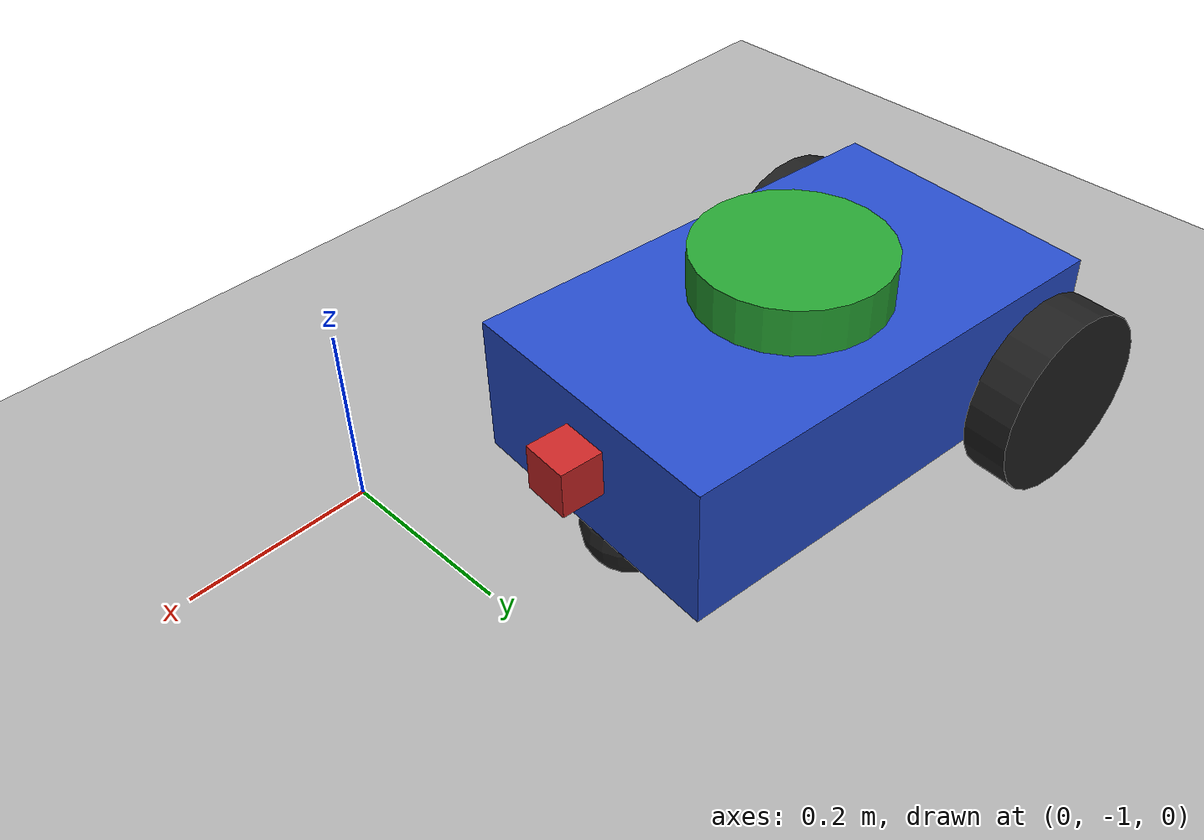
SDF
<sdf version="1.10">
 <world name="default">
  <plugin name="gz::sim::systems::Physics" filename="gz-sim-physics-system"/>
  <plugin name="gz::sim::systems::UserCommands" filename="gz-sim-user-commands-system"/>
  <plugin name="gz::sim::systems::SceneBroadcaster" filename="gz-sim-scene-broadcaster-system"/>
  <plugin name="gz::sim::systems::Sensors" filename="gz-sim-sensors-system">
   <render_engine>ogre2</render_engine>
  </plugin>
  <plugin name="gz::sim::systems::Imu" filename="gz-sim-imu-system"/>
  <scene>
   <shadows>false</shadows>
   <ambient>0.400000006 0.400000006 0.400000006 1</ambient>
   <background>0.699999988 0.699999988 0.699999988 1</background>
  </scene>
  <physics type="ode">
   <real_time_update_rate>1000</real_time_update_rate>
   <max_step_size>0.001</max_step_size>
   <real_time_factor>1</real_time_factor>
   <ode>
    <solver>
     <type>quick</type>
     <iters>150</iters>
     <precon_iters>0</precon_iters>
     <sor>1.3999999999999999</sor>
     <use_dynamic_moi_rescaling>true</use_dynamic_moi_rescaling>
    </solver>
    <constraints>
     <cfm>1.0000000000000001e-05</cfm>
     <erp>0.20000000000000001</erp>
     <contact_max_correcting_vel>2000</contact_max_correcting_vel>
     <contact_surface_layer>0.01</contact_surface_layer>
    </constraints>
   </ode>
  </physics>
  <gravity>0 0 -9.8000000000000007</gravity>
  <magnetic_field>5.5644999999999998e-06 2.2875799999999999e-05 -4.2388400000000002e-05</magnetic_field>
  <atmosphere type="adiabatic"/>
  <model name="ground_plane">
   <static>true</static>
   <link name="link">
    <collision name="collision">
     <geometry><plane><normal>0 0 1</normal><size>100 100</size></plane></geometry>
     <surface><friction><ode><mu>100</mu><mu2>50</mu2></ode></friction></surface>
    </collision>
    <visual name="visual">
     <cast_shadows>false</cast_shadows>
     <geometry><plane><normal>0 0 1</normal><size>100 100</size></plane></geometry>
     <material>
      <ambient>0.300000012 0.300000012 0.300000012 1</ambient>
      <diffuse>0.699999988 0.699999988 0.699999988 1</diffuse>
      <specular>0.00999999978 0.00999999978 0.00999999978 1</specular>
     </material>
    </visual>
    <inertial>
     <mass>1</mass>
     <inertia><ixx>1</ixx><ixy>0</ixy><ixz>0</ixz><iyy>1</iyy><iyz>0</iyz><izz>1</izz></inertia>
    </inertial>
   </link>
  </model>
  <model name="diffbot">
   <link name="base_link">
    <inertial>
     <pose>0.11749999999999999 0 0.027500000000000011 0 0 0</pose>
     <mass>0.40000000000000002</mass>
     <inertia>
      <ixx>0.0147075</ixx>
      <ixy>0</ixy>
      <ixz>0.0030225000000000009</ixz>
      <iyy>0.020475</iyy>
      <iyz>0</iyz>
      <izz>0.017767499999999999</izz>
     </inertia>
    </inertial>
    <collision name="base_link_collision">
     <geometry><box><size>0.5 0.29999999999999999 0.14999999999999999</size></box></geometry>
    </collision>
    <collision name="base_link_fixed_joint_lump__camera_collision_1">
     <pose>0.27000000000000002 0 0.01 0 0 0</pose>
     <geometry><box><size>0.050000000000000003 0.050000000000000003 0.050000000000000003</size></box></geometry>
    </collision>
    <collision name="base_link_fixed_joint_lump__caster_wheel_collision_2">
     <pose>0.20000000000000001 0 -0.10000000000000001 0 0 0</pose>
     <geometry><sphere><radius>0.050000000000000003</radius></sphere></geometry>
     <surface><friction><ode><mu>0.10000000000000001</mu><mu2>0.10000000000000001</mu2></ode></friction></surface>
    </collision>
    <collision name="base_link_fixed_joint_lump__lidar_collision_3">
     <pose>0 0 0.10000000000000001 0 0 0</pose>
     <geometry>
      <cylinder><length>0.050000000000000003</length><radius>0.10000000000000001</radius></cylinder>
     </geometry>
    </collision>
    <visual name="base_link_visual">
     <geometry><box><size>0.5 0.29999999999999999 0.14999999999999999</size></box></geometry>
     <material>
      <script><name>Gazebo/Blue</name><uri>file://media/materials/scripts/gazebo.material</uri></script>
      <diffuse>0 0 1 1</diffuse>
      <ambient>0 0 1 1</ambient>
     </material>
    </visual>
    <visual name="base_link_fixed_joint_lump__camera_visual_1">
     <pose>0.27000000000000002 0 0.01 0 0 0</pose>
     <geometry><box><size>0.050000000000000003 0.050000000000000003 0.050000000000000003</size></box></geometry>
     <material>
      <script><name>Gazebo/Red</name><uri>file://media/materials/scripts/gazebo.material</uri></script>
      <diffuse>1 0 0 1</diffuse>
      <ambient>1 0 0 1</ambient>
     </material>
    </visual>
    <visual name="base_link_fixed_joint_lump__caster_wheel_visual_2">
     <pose>0.20000000000000001 0 -0.10000000000000001 0 0 0</pose>
     <geometry><sphere><radius>0.050000000000000003</radius></sphere></geometry>
     <material>
      <script><name>Gazebo/Black</name><uri>file://media/materials/scripts/gazebo.material</uri></script>
      <diffuse>0 0 0 1</diffuse>
      <ambient>0 0 0 1</ambient>
     </material>
    </visual>
    <visual name="base_link_fixed_joint_lump__lidar_visual_3">
     <pose>0 0 0.10000000000000001 0 0 0</pose>
     <geometry>
      <cylinder><length>0.050000000000000003</length><radius>0.10000000000000001</radius></cylinder>
     </geometry>
     <material>
      <script><name>Gazebo/Green</name><uri>file://media/materials/scripts/gazebo.material</uri></script>
      <diffuse>0 0 0 1</diffuse>
      <ambient>0 0 0 1</ambient>
     </material>
    </visual>
    <sensor name="camera" type="camera">
     <pose>0.27000000000000002 0 0.01 0 0 0</pose>
     <topic>camera/image_raw</topic>
     <update_rate>30</update_rate>
     <enable_metrics>false</enable_metrics>
     <camera name="head">
      <horizontal_fov>1.3962634</horizontal_fov>
      <image><width>800</width><height>600</height><format>RGB_INT8</format><anti_aliasing>4</anti_aliasing></image>
      <camera_info_topic>camera/camera_info</camera_info_topic>
      <triggered>false</triggered>
      <clip><near>0.02</near><far>300</far></clip>
      <save enabled="false"><path>__default__</path></save>
      <visibility_mask>4294967295</visibility_mask>
      <noise><type>gaussian</type><mean>0</mean><stddev>0.0070000000000000001</stddev></noise>
      <distortion><k1>0</k1><k2>0</k2><k3>0</k3><p1>0</p1><p2>0</p2><center>0.5 0.5</center></distortion>
      <lens>
       <type>stereographic</type>
       <scale_to_hfov>true</scale_to_hfov>
       <cutoff_angle>1.5707963267948966</cutoff_angle>
       <env_texture_size>256</env_texture_size>
      </lens>
     </camera>
    </sensor>
    <sensor name="lidar" type="gpu_lidar">
     <pose>0 0 0.10000000000000001 0 0 0</pose>
     <topic>scan</topic>
     <update_rate>10</update_rate>
     <enable_metrics>false</enable_metrics>
     <lidar>
      <scan>
       <horizontal>
        <samples>360</samples>
        <resolution>1</resolution>
        <min_angle>-3.1415899999999999</min_angle>
        <max_angle>3.1415899999999999</max_angle>
       </horizontal>
       <vertical>
        <samples>1</samples>
        <min_angle>0</min_angle>
        <max_angle>0</max_angle>
        <resolution>1</resolution>
       </vertical>
      </scan>
      <range><min>0.20000000000000001</min><max>30</max><resolution>0.01</resolution></range>
      <noise><type>gaussian</type><mean>0</mean><stddev>0.01</stddev></noise>
      <visibility_mask>4294967295</visibility_mask>
     </lidar>
    </sensor>
   </link>
   <joint name="left_wheel_joint" type="revolute">
    <pose>0 2.7755575615628914e-17 5.5511151231257827e-17 0 0 0</pose>
    <parent>base_link</parent>
    <child>left_wheel</child>
    <axis>
     <xyz>0 0 1</xyz>
     <limit>
      <lower>-inf</lower>
      <upper>inf</upper>
      <effort>inf</effort>
      <velocity>inf</velocity>
      <stiffness>100000000</stiffness>
      <dissipation>1</dissipation>
     </limit>
     <dynamics>
      <spring_reference>0</spring_reference>
      <spring_stiffness>0</spring_stiffness>
      <damping>0</damping>
      <friction>0</friction>
     </dynamics>
    </axis>
   </joint>
   <link name="left_wheel">
    <pose>-0.19999999999999996 0.17499999999999993 -0.049999999999999989 -1.570800162663238 0.29226354564258911 -1.1051923791936256e-06</pose>
    <inertial>
     <mass>0.5</mass>
     <inertia><ixx>0.01</ixx><ixy>0</ixy><ixz>0</ixz><iyy>0.01</iyy><iyz>0</iyz><izz>0.01</izz></inertia>
    </inertial>
    <collision name="left_wheel_collision">
     <geometry>
      <cylinder><length>0.050000000000000003</length><radius>0.10000000000000001</radius></cylinder>
     </geometry>
     <surface><friction><ode><mu>1</mu><mu2>1</mu2></ode></friction></surface>
    </collision>
    <visual name="left_wheel_visual">
     <geometry>
      <cylinder><length>0.050000000000000003</length><radius>0.10000000000000001</radius></cylinder>
     </geometry>
     <material>
      <script><name>Gazebo/Black</name><uri>file://media/materials/scripts/gazebo.material</uri></script>
      <diffuse>0 0 0 1</diffuse>
      <ambient>0 0 0 1</ambient>
     </material>
    </visual>
   </link>
   <joint name="right_wheel_joint" type="revolute">
    <pose>0 3.4694469519536142e-17 -5.5511151231257827e-17 0 0 0</pose>
    <parent>base_link</parent>
    <child>right_wheel</child>
    <axis>
     <xyz>0 0 1</xyz>
     <limit>
      <lower>-inf</lower>
      <upper>inf</upper>
      <effort>inf</effort>
      <velocity>inf</velocity>
      <stiffness>100000000</stiffness>
      <dissipation>1</dissipation>
     </limit>
     <dynamics>
      <spring_reference>0</spring_reference>
      <spring_stiffness>0</spring_stiffness>
      <damping>0</damping>
      <friction>0</friction>
     </dynamics>
    </axis>
   </joint>
   <link name="right_wheel">
    <pose>-0.1999999999999999 -0.17499999999999993 -0.050000000000000058 1.5708000064250129 0.05910348772676445 -3.1415924362374148</pose>
    <inertial>
     <mass>0.5</mass>
     <inertia><ixx>0.01</ixx><ixy>0</ixy><ixz>0</ixz><iyy>0.01</iyy><iyz>0</iyz><izz>0.01</izz></inertia>
    </inertial>
    <collision name="right_wheel_collision">
     <geometry>
      <cylinder><length>0.050000000000000003</length><radius>0.10000000000000001</radius></cylinder>
     </geometry>
     <surface><friction><ode><mu>1</mu><mu2>1</mu2></ode></friction></surface>
    </collision>
    <visual name="right_wheel_visual">
     <geometry>
      <cylinder><length>0.050000000000000003</length><radius>0.10000000000000001</radius></cylinder>
     </geometry>
     <material>
      <script><name>Gazebo/Black</name><uri>file://media/materials/scripts/gazebo.material</uri></script>
      <diffuse>0 0 0 1</diffuse>
      <ambient>0 0 0 1</ambient>
     </material>
    </visual>
   </link>
   <plugin name="gz::sim::systems::DiffDrive" filename="gz-sim-diff-drive-system">
    <left_joint>left_wheel_joint</left_joint>
    <right_joint>right_wheel_joint</right_joint>
    <wheel_separation>0.287</wheel_separation>
    <wheel_radius>0.033</wheel_radius>
    <max_linear_acceleration>0.033</max_linear_acceleration>
    <topic>cmd_vel</topic>
    <odom_topic>odom</odom_topic>
    <frame_id>odom</frame_id>
    <child_frame_id>base_footprint</child_frame_id>
    <odom_publisher_frequency>30</odom_publisher_frequency>
    <tf_topic>/tf</tf_topic>
   </plugin>
   <plugin name="gz::sim::systems::JointStatePublisher" filename="gz-sim-joint-state-publisher-system">
    <update_rate>50</update_rate>
    <joint_name>left_wheel_joint</joint_name>
    <joint_name>right_wheel_joint</joint_name>
    <topic>joint_states</topic>
    <update_rate>30</update_rate>
   </plugin>
   <frame name="camera_joint" attached_to="base_link"><pose>0.27000000000000002 0 0.01 0 0 0</pose></frame>
   <frame name="camera" attached_to="camera_joint"/>
   <frame name="caster_wheel_joint" attached_to="base_link">
    <pose>0.20000000000000001 0 -0.10000000000000001 0 0 0</pose>
   </frame>
   <frame name="caster_wheel" attached_to="caster_wheel_joint"/>
   <frame name="lidar_joint" attached_to="base_link"><pose>0 0 0.10000000000000001 0 0 0</pose></frame>
   <frame name="lidar" attached_to="lidar_joint"/>
   <pose>-0.32676574985959811 -0.71916587467004356 0.14999999901570371 9.2468147500102913e-10 4.4639935923893701e-07 -0.095772806217853931</pose>
   <static>false</static>
  </model>
  <light name="sun" type="directional">
   <pose>0 0 10 0 0 0</pose>
   <intensity>1</intensity>
   <direction>-0.5 0.10000000000000001 -0.90000000000000002</direction>
   <diffuse>0.800000012 0.800000012 0.800000012 1</diffuse>
   <specular>0.200000003 0.200000003 0.200000003 1</specular>
   <attenuation>
    <range>1000</range>
    <linear>0.01</linear>
    <constant>0.90000000000000002</constant>
    <quadratic>0.001</quadratic>
   </attenuation>
   <spot><inner_angle>0</inner_angle><outer_angle>0</outer_angle><falloff>0</falloff></spot>
  </light>
 </world>
</sdf>
